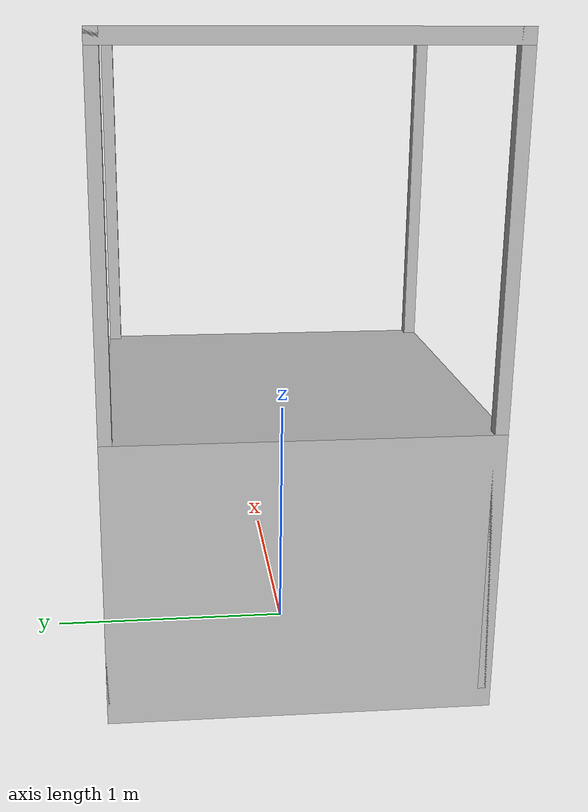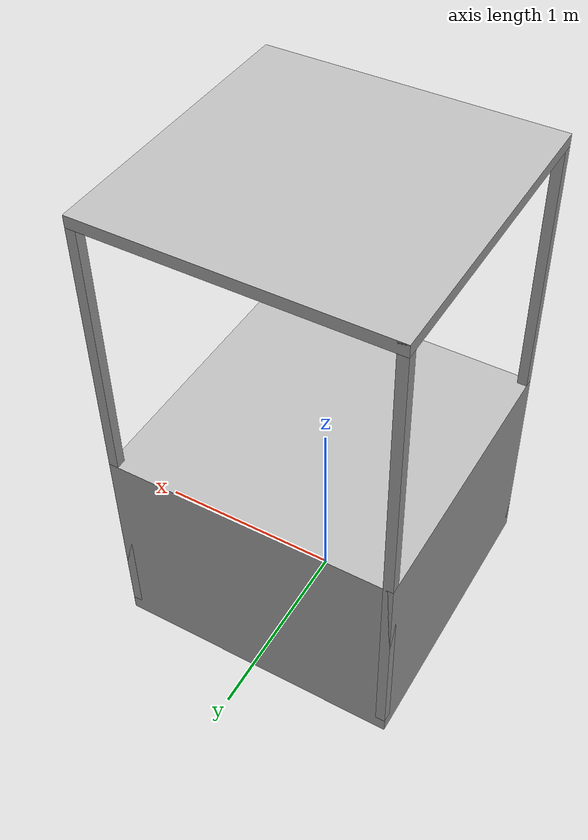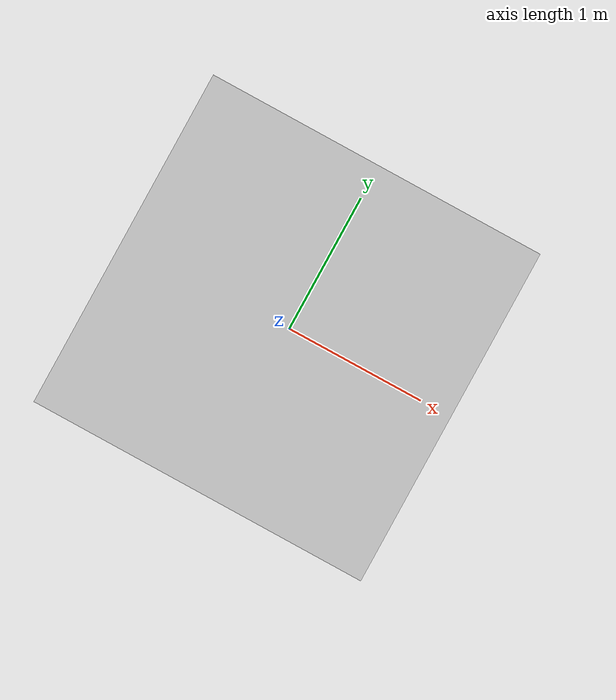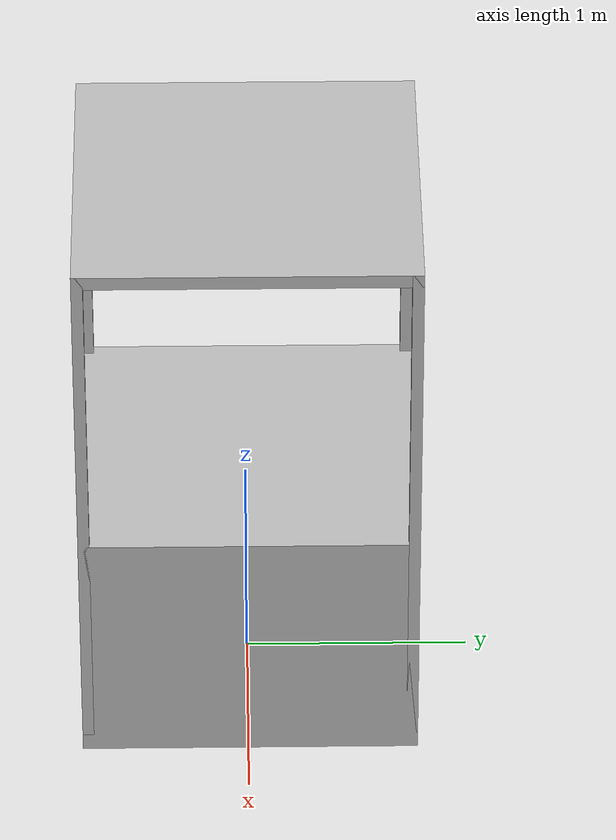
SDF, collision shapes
<?xml version="1.0" ?>
<sdf version="1.9">
  <model name="Enclosure">
    <link name="enclosure_link">
      <visual name="enclosure_visual">
        <geometry>
          <mesh>
            <uri>enclosure_visual.glb</uri>
          </mesh>
        </geometry>
      </visual>
      <visual name="light_visual">
        <geometry>
          <mesh>
            <uri>light_visual.glb</uri>
          </mesh>
        </geometry>
      </visual>
      <collision name="v1015026001_collider_box">
        <pose>-0.010998 0.009283 0.569706 -1.570796 -3.141593 -0.0</pose>
        <geometry>
          <box>
            <size>1.5 1.138984 1.5</size>
          </box>
        </geometry>
      </collision>
      <collision name="v1015028001_collider_box">
        <pose>0.713602 0.733883 1.329198 -0.0 0.0 3.141593</pose>
        <geometry>
          <box>
            <size>0.0508 0.0508 2.5</size>
          </box>
        </geometry>
      </collision>
      <collision name="v1015013001_collider_box">
        <pose>-0.010998 0.009283 2.548799 -0.0 -1.570796 0.0</pose>
        <geometry>
          <box>
            <size>0.0608 1.5 1.5</size>
          </box>
        </geometry>
      </collision>
      <collision name="v1015027_collider_box">
        <pose>-0.735598 0.733883 1.329198 -0.0 0.0 3.141593</pose>
        <geometry>
          <box>
            <size>0.0508 0.0508 2.5</size>
          </box>
        </geometry>
      </collision>
      <collision name="v1015029_collider_box">
        <pose>-0.735598 -0.715317 1.329198 -3.141593 0.0 3.141593</pose>
        <geometry>
          <box>
            <size>0.0508 0.0508 2.5</size>
          </box>
        </geometry>
      </collision>
      <collision name="v1015030_collider_box">
        <pose>0.713602 -0.715317 1.329198 -0.0 0.0 3.141593</pose>
        <geometry>
          <box>
            <size>0.0508 0.0508 2.5</size>
          </box>
        </geometry>
      </collision>
    </link>
  </model>
</sdf>
